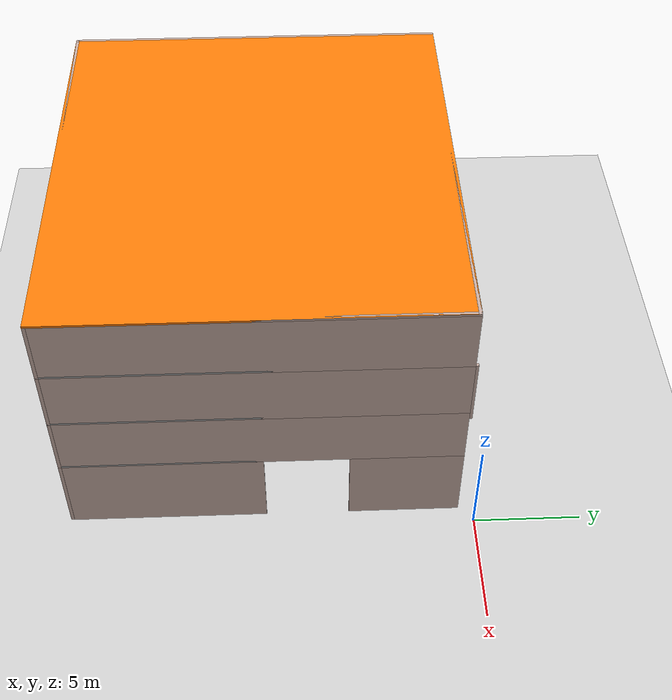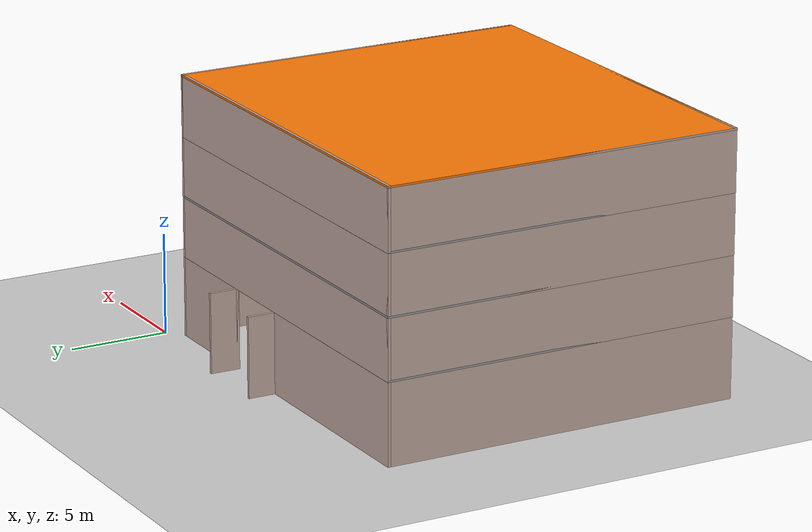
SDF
<sdf version="1.7">
 <world name="default">
  <model name="ground_plane">
   <static>1</static>
   <link name="link">
    <collision name="collision">
     <geometry><plane><normal>0 0 1</normal><size>100 100</size></plane></geometry>
     <surface><friction><ode><mu>100</mu><mu2>50</mu2></ode></friction></surface>
    </collision>
    <visual name="visual">
     <cast_shadows>0</cast_shadows>
     <geometry><plane><normal>0 0 1</normal><size>100 100</size></plane></geometry>
     <material>
      <script><uri>file://media/materials/scripts/gazebo.material</uri><name>Gazebo/Grey</name></script>
     </material>
    </visual>
   </link>
  </model>
  <model name="building2">
   <link name="Floor_0">
    <pose>0 -0.675 4 0 -0 0</pose>
    <visual name="Floor_0_Visual">
     <pose>0 0 0.05 0 -0 0</pose>
     <geometry><box><size>20.15 18.15 0.1</size></box></geometry>
     <material>
      <script><uri>file://media/materials/scripts/gazebo.material</uri><name>Gazebo/Grey</name></script>
      <ambient>1 1 1 1</ambient>
      <shader type="pixel"/>
     </material>
     <meta><layer>1</layer></meta>
    </visual>
    <collision name="Floor_0_Collision">
     <pose>0 0 0.05 0 -0 0</pose>
     <geometry><box><size>20.15 18.15 0.1</size></box></geometry>
     <surface>
      <friction>
       <ode><mu>1</mu><mu2>1</mu2><fdir1>0 0 0</fdir1><slip1>0</slip1><slip2>0</slip2></ode>
       <torsional>
        <coefficient>1</coefficient>
        <patch_radius>0</patch_radius>
        <surface_radius>0</surface_radius>
        <use_patch_radius>1</use_patch_radius>
        <ode><slip>0</slip></ode>
       </torsional>
      </friction>
      <bounce><restitution_coefficient>0</restitution_coefficient><threshold>1e+06</threshold></bounce>
      <contact>
       <collide_without_contact>0</collide_without_contact>
       <collide_without_contact_bitmask>1</collide_without_contact_bitmask>
       <collide_bitmask>1</collide_bitmask>
       <ode>
        <soft_cfm>0</soft_cfm>
        <soft_erp>0.2</soft_erp>
        <kp>1e+13</kp>
        <kd>1</kd>
        <max_vel>0.01</max_vel>
        <min_depth>0</min_depth>
       </ode>
       <bullet>
        <split_impulse>1</split_impulse>
        <split_impulse_penetration_threshold>-0.01</split_impulse_penetration_threshold>
        <soft_cfm>0</soft_cfm>
        <soft_erp>0.2</soft_erp>
        <kp>1e+13</kp>
        <kd>1</kd>
       </bullet>
      </contact>
     </surface>
    </collision>
   </link>
   <link name="Floor_2">
    <pose>0 -0.675 7 0 -0 0</pose>
    <visual name="Floor_2_Visual">
     <pose>0 0 0.05 0 -0 0</pose>
     <geometry><box><size>20.15 18.15 0.1</size></box></geometry>
     <material>
      <script><uri>file://media/materials/scripts/gazebo.material</uri><name>Gazebo/Grey</name></script>
      <ambient>1 1 1 1</ambient>
      <shader type="pixel"/>
     </material>
     <meta><layer>2</layer></meta>
    </visual>
    <collision name="Floor_2_Collision">
     <pose>0 0 0.05 0 -0 0</pose>
     <geometry><box><size>20.15 18.15 0.1</size></box></geometry>
     <surface>
      <friction>
       <ode><mu>1</mu><mu2>1</mu2><fdir1>0 0 0</fdir1><slip1>0</slip1><slip2>0</slip2></ode>
       <torsional>
        <coefficient>1</coefficient>
        <patch_radius>0</patch_radius>
        <surface_radius>0</surface_radius>
        <use_patch_radius>1</use_patch_radius>
        <ode><slip>0</slip></ode>
       </torsional>
      </friction>
      <bounce><restitution_coefficient>0</restitution_coefficient><threshold>1e+06</threshold></bounce>
      <contact>
       <collide_without_contact>0</collide_without_contact>
       <collide_without_contact_bitmask>1</collide_without_contact_bitmask>
       <collide_bitmask>1</collide_bitmask>
       <ode>
        <soft_cfm>0</soft_cfm>
        <soft_erp>0.2</soft_erp>
        <kp>1e+13</kp>
        <kd>1</kd>
        <max_vel>0.01</max_vel>
        <min_depth>0</min_depth>
       </ode>
       <bullet>
        <split_impulse>1</split_impulse>
        <split_impulse_penetration_threshold>-0.01</split_impulse_penetration_threshold>
        <soft_cfm>0</soft_cfm>
        <soft_erp>0.2</soft_erp>
        <kp>1e+13</kp>
        <kd>1</kd>
       </bullet>
      </contact>
     </surface>
    </collision>
   </link>
   <link name="Floor_3">
    <pose>0 -0.675 10 0 -0 0</pose>
    <visual name="Floor_3_Visual">
     <pose>0 0 0.05 0 -0 0</pose>
     <geometry><box><size>20.15 18.15 0.1</size></box></geometry>
     <material>
      <script><uri>file://media/materials/scripts/gazebo.material</uri><name>Gazebo/Grey</name></script>
      <ambient>1 1 1 1</ambient>
      <shader type="pixel"/>
     </material>
     <meta><layer>3</layer></meta>
    </visual>
    <collision name="Floor_3_Collision">
     <pose>0 0 0.05 0 -0 0</pose>
     <geometry><box><size>20.15 18.15 0.1</size></box></geometry>
     <surface>
      <friction>
       <ode><mu>1</mu><mu2>1</mu2><fdir1>0 0 0</fdir1><slip1>0</slip1><slip2>0</slip2></ode>
       <torsional>
        <coefficient>1</coefficient>
        <patch_radius>0</patch_radius>
        <surface_radius>0</surface_radius>
        <use_patch_radius>1</use_patch_radius>
        <ode><slip>0</slip></ode>
       </torsional>
      </friction>
      <bounce><restitution_coefficient>0</restitution_coefficient><threshold>1e+06</threshold></bounce>
      <contact>
       <collide_without_contact>0</collide_without_contact>
       <collide_without_contact_bitmask>1</collide_without_contact_bitmask>
       <collide_bitmask>1</collide_bitmask>
       <ode>
        <soft_cfm>0</soft_cfm>
        <soft_erp>0.2</soft_erp>
        <kp>1e+13</kp>
        <kd>1</kd>
        <max_vel>0.01</max_vel>
        <min_depth>0</min_depth>
       </ode>
       <bullet>
        <split_impulse>1</split_impulse>
        <split_impulse_penetration_threshold>-0.01</split_impulse_penetration_threshold>
        <soft_cfm>0</soft_cfm>
        <soft_erp>0.2</soft_erp>
        <kp>1e+13</kp>
        <kd>1</kd>
       </bullet>
      </contact>
     </surface>
    </collision>
   </link>
   <link name="Floor_8">
    <pose>0 -0.675 13 0 -0 0</pose>
    <visual name="Floor_8_Visual">
     <pose>0 0 0.05 0 -0 0</pose>
     <geometry><box><size>20.15 18.15 0.1</size></box></geometry>
     <material>
      <script><uri>file://media/materials/scripts/gazebo.material</uri><name>Gazebo/Grey</name></script>
      <ambient>0.996078 0.47451 0.0196078 1</ambient>
      <shader type="pixel"/>
     </material>
     <meta><layer>4</layer></meta>
    </visual>
    <collision name="Floor_8_Collision">
     <pose>0 0 0.05 0 -0 0</pose>
     <geometry><box><size>20.15 18.15 0.1</size></box></geometry>
     <surface>
      <friction>
       <ode><mu>1</mu><mu2>1</mu2><fdir1>0 0 0</fdir1><slip1>0</slip1><slip2>0</slip2></ode>
       <torsional>
        <coefficient>1</coefficient>
        <patch_radius>0</patch_radius>
        <surface_radius>0</surface_radius>
        <use_patch_radius>1</use_patch_radius>
        <ode><slip>0</slip></ode>
       </torsional>
      </friction>
      <bounce><restitution_coefficient>0</restitution_coefficient><threshold>1e+06</threshold></bounce>
      <contact>
       <collide_without_contact>0</collide_without_contact>
       <collide_without_contact_bitmask>1</collide_without_contact_bitmask>
       <collide_bitmask>1</collide_bitmask>
       <ode>
        <soft_cfm>0</soft_cfm>
        <soft_erp>0.2</soft_erp>
        <kp>1e+13</kp>
        <kd>1</kd>
        <max_vel>0.01</max_vel>
        <min_depth>0</min_depth>
       </ode>
       <bullet>
        <split_impulse>1</split_impulse>
        <split_impulse_penetration_threshold>-0.01</split_impulse_penetration_threshold>
        <soft_cfm>0</soft_cfm>
        <soft_erp>0.2</soft_erp>
        <kp>1e+13</kp>
        <kd>1</kd>
       </bullet>
      </contact>
     </surface>
    </collision>
   </link>
   <link name="Wall_11">
    <pose>0.8 9 0 0 0 -1.5708</pose>
    <visual name="Wall_11_Visual">
     <pose>0 0 2 0 -0 0</pose>
     <geometry><box><size>1.5 0.15 4</size></box></geometry>
     <material>
      <script><uri>file://media/materials/scripts/gazebo.material</uri><name>Gazebo/Grey</name></script>
      <ambient>0.760784 0.662745 0.627451 1</ambient>
      <shader type="pixel"/>
     </material>
     <meta><layer>0</layer></meta>
    </visual>
    <collision name="Wall_11_Collision">
     <pose>0 0 2 0 -0 0</pose>
     <geometry><box><size>1.5 0.15 4</size></box></geometry>
     <surface>
      <friction>
       <ode><mu>1</mu><mu2>1</mu2><fdir1>0 0 0</fdir1><slip1>0</slip1><slip2>0</slip2></ode>
       <torsional>
        <coefficient>1</coefficient>
        <patch_radius>0</patch_radius>
        <surface_radius>0</surface_radius>
        <use_patch_radius>1</use_patch_radius>
        <ode><slip>0</slip></ode>
       </torsional>
      </friction>
      <bounce><restitution_coefficient>0</restitution_coefficient><threshold>1e+06</threshold></bounce>
      <contact>
       <collide_without_contact>0</collide_without_contact>
       <collide_without_contact_bitmask>1</collide_without_contact_bitmask>
       <collide_bitmask>1</collide_bitmask>
       <ode>
        <soft_cfm>0</soft_cfm>
        <soft_erp>0.2</soft_erp>
        <kp>1e+13</kp>
        <kd>1</kd>
        <max_vel>0.01</max_vel>
        <min_depth>0</min_depth>
       </ode>
       <bullet>
        <split_impulse>1</split_impulse>
        <split_impulse_penetration_threshold>-0.01</split_impulse_penetration_threshold>
        <soft_cfm>0</soft_cfm>
        <soft_erp>0.2</soft_erp>
        <kp>1e+13</kp>
        <kd>1</kd>
       </bullet>
      </contact>
     </surface>
    </collision>
   </link>
   <link name="Wall_12">
    <pose>-4.6 8.325 0 0 -0 3.14159</pose>
    <visual name="Wall_12_Visual">
     <pose>0 0 2 0 -0 0</pose>
     <geometry><box><size>10.95 0.15 4</size></box></geometry>
     <material>
      <script><uri>file://media/materials/scripts/gazebo.material</uri><name>Gazebo/Grey</name></script>
      <ambient>0.760784 0.662745 0.627451 1</ambient>
      <shader type="pixel"/>
     </material>
     <meta><layer>0</layer></meta>
    </visual>
    <collision name="Wall_12_Collision">
     <pose>0 0 2 0 -0 0</pose>
     <geometry><box><size>10.95 0.15 4</size></box></geometry>
     <surface>
      <friction>
       <ode><mu>1</mu><mu2>1</mu2><fdir1>0 0 0</fdir1><slip1>0</slip1><slip2>0</slip2></ode>
       <torsional>
        <coefficient>1</coefficient>
        <patch_radius>0</patch_radius>
        <surface_radius>0</surface_radius>
        <use_patch_radius>1</use_patch_radius>
        <ode><slip>0</slip></ode>
       </torsional>
      </friction>
      <bounce><restitution_coefficient>0</restitution_coefficient><threshold>1e+06</threshold></bounce>
      <contact>
       <collide_without_contact>0</collide_without_contact>
       <collide_without_contact_bitmask>1</collide_without_contact_bitmask>
       <collide_bitmask>1</collide_bitmask>
       <ode>
        <soft_cfm>0</soft_cfm>
        <soft_erp>0.2</soft_erp>
        <kp>1e+13</kp>
        <kd>1</kd>
        <max_vel>0.01</max_vel>
        <min_depth>0</min_depth>
       </ode>
       <bullet>
        <split_impulse>1</split_impulse>
        <split_impulse_penetration_threshold>-0.01</split_impulse_penetration_threshold>
        <soft_cfm>0</soft_cfm>
        <soft_erp>0.2</soft_erp>
        <kp>1e+13</kp>
        <kd>1</kd>
       </bullet>
      </contact>
     </surface>
    </collision>
   </link>
   <link name="Wall_14">
    <pose>-10 -0.675 0 0 0 -1.5708</pose>
    <visual name="Wall_14_Visual">
     <pose>0 0 2 0 -0 0</pose>
     <geometry><box><size>18.15 0.15 4</size></box></geometry>
     <material>
      <script><uri>file://media/materials/scripts/gazebo.material</uri><name>Gazebo/Grey</name></script>
      <ambient>0.760784 0.662745 0.627451 1</ambient>
      <shader type="pixel"/>
     </material>
     <meta><layer>0</layer></meta>
    </visual>
    <collision name="Wall_14_Collision">
     <pose>0 0 2 0 -0 0</pose>
     <geometry><box><size>18.15 0.15 4</size></box></geometry>
     <surface>
      <friction>
       <ode><mu>1</mu><mu2>1</mu2><fdir1>0 0 0</fdir1><slip1>0</slip1><slip2>0</slip2></ode>
       <torsional>
        <coefficient>1</coefficient>
        <patch_radius>0</patch_radius>
        <surface_radius>0</surface_radius>
        <use_patch_radius>1</use_patch_radius>
        <ode><slip>0</slip></ode>
       </torsional>
      </friction>
      <bounce><restitution_coefficient>0</restitution_coefficient><threshold>1e+06</threshold></bounce>
      <contact>
       <collide_without_contact>0</collide_without_contact>
       <collide_without_contact_bitmask>1</collide_without_contact_bitmask>
       <collide_bitmask>1</collide_bitmask>
       <ode>
        <soft_cfm>0</soft_cfm>
        <soft_erp>0.2</soft_erp>
        <kp>1e+13</kp>
        <kd>1</kd>
        <max_vel>0.01</max_vel>
        <min_depth>0</min_depth>
       </ode>
       <bullet>
        <split_impulse>1</split_impulse>
        <split_impulse_penetration_threshold>-0.01</split_impulse_penetration_threshold>
        <soft_cfm>0</soft_cfm>
        <soft_erp>0.2</soft_erp>
        <kp>1e+13</kp>
        <kd>1</kd>
       </bullet>
      </contact>
     </surface>
    </collision>
   </link>
   <link name="Wall_16">
    <pose>0 -9.675 0 0 -0 0</pose>
    <visual name="Wall_16_Visual">
     <pose>0 0 2 0 -0 0</pose>
     <geometry><box><size>20.15 0.15 4</size></box></geometry>
     <material>
      <script><uri>file://media/materials/scripts/gazebo.material</uri><name>Gazebo/Grey</name></script>
      <ambient>0.760784 0.662745 0.627451 1</ambient>
      <shader type="pixel"/>
     </material>
     <meta><layer>0</layer></meta>
    </visual>
    <collision name="Wall_16_Collision">
     <pose>0 0 2 0 -0 0</pose>
     <geometry><box><size>20.15 0.15 4</size></box></geometry>
     <surface>
      <friction>
       <ode><mu>1</mu><mu2>1</mu2><fdir1>0 0 0</fdir1><slip1>0</slip1><slip2>0</slip2></ode>
       <torsional>
        <coefficient>1</coefficient>
        <patch_radius>0</patch_radius>
        <surface_radius>0</surface_radius>
        <use_patch_radius>1</use_patch_radius>
        <ode><slip>0</slip></ode>
       </torsional>
      </friction>
      <bounce><restitution_coefficient>0</restitution_coefficient><threshold>1e+06</threshold></bounce>
      <contact>
       <collide_without_contact>0</collide_without_contact>
       <collide_without_contact_bitmask>1</collide_without_contact_bitmask>
       <collide_bitmask>1</collide_bitmask>
       <ode>
        <soft_cfm>0</soft_cfm>
        <soft_erp>0.2</soft_erp>
        <kp>1e+13</kp>
        <kd>1</kd>
        <max_vel>0.01</max_vel>
        <min_depth>0</min_depth>
       </ode>
       <bullet>
        <split_impulse>1</split_impulse>
        <split_impulse_penetration_threshold>-0.01</split_impulse_penetration_threshold>
        <soft_cfm>0</soft_cfm>
        <soft_erp>0.2</soft_erp>
        <kp>1e+13</kp>
        <kd>1</kd>
       </bullet>
      </contact>
     </surface>
    </collision>
   </link>
   <link name="Wall_24">
    <pose>-10 -0.675 4 0 0 -1.5708</pose>
    <visual name="Wall_24_Visual">
     <pose>0 0 1.5 0 -0 0</pose>
     <geometry><box><size>18.15 0.15 3</size></box></geometry>
     <material>
      <script><uri>file://media/materials/scripts/gazebo.material</uri><name>Gazebo/Grey</name></script>
      <ambient>0.760784 0.662745 0.627451 1</ambient>
      <shader type="pixel"/>
     </material>
     <meta><layer>1</layer></meta>
    </visual>
    <collision name="Wall_24_Collision">
     <pose>0 0 1.5 0 -0 0</pose>
     <geometry><box><size>18.15 0.15 3</size></box></geometry>
     <surface>
      <friction>
       <ode><mu>1</mu><mu2>1</mu2><fdir1>0 0 0</fdir1><slip1>0</slip1><slip2>0</slip2></ode>
       <torsional>
        <coefficient>1</coefficient>
        <patch_radius>0</patch_radius>
        <surface_radius>0</surface_radius>
        <use_patch_radius>1</use_patch_radius>
        <ode><slip>0</slip></ode>
       </torsional>
      </friction>
      <bounce><restitution_coefficient>0</restitution_coefficient><threshold>1e+06</threshold></bounce>
      <contact>
       <collide_without_contact>0</collide_without_contact>
       <collide_without_contact_bitmask>1</collide_without_contact_bitmask>
       <collide_bitmask>1</collide_bitmask>
       <ode>
        <soft_cfm>0</soft_cfm>
        <soft_erp>0.2</soft_erp>
        <kp>1e+13</kp>
        <kd>1</kd>
        <max_vel>0.01</max_vel>
        <min_depth>0</min_depth>
       </ode>
       <bullet>
        <split_impulse>1</split_impulse>
        <split_impulse_penetration_threshold>-0.01</split_impulse_penetration_threshold>
        <soft_cfm>0</soft_cfm>
        <soft_erp>0.2</soft_erp>
        <kp>1e+13</kp>
        <kd>1</kd>
       </bullet>
      </contact>
     </surface>
    </collision>
   </link>
   <link name="Wall_25">
    <pose>0 -9.675 4 0 -0 0</pose>
    <visual name="Wall_25_Visual">
     <pose>0 0 1.5 0 -0 0</pose>
     <geometry><box><size>20.15 0.15 3</size></box></geometry>
     <material>
      <script><uri>file://media/materials/scripts/gazebo.material</uri><name>Gazebo/Grey</name></script>
      <ambient>0.760784 0.662745 0.627451 1</ambient>
      <shader type="pixel"/>
     </material>
     <meta><layer>1</layer></meta>
    </visual>
    <collision name="Wall_25_Collision">
     <pose>0 0 1.5 0 -0 0</pose>
     <geometry><box><size>20.15 0.15 3</size></box></geometry>
     <surface>
      <friction>
       <ode><mu>1</mu><mu2>1</mu2><fdir1>0 0 0</fdir1><slip1>0</slip1><slip2>0</slip2></ode>
       <torsional>
        <coefficient>1</coefficient>
        <patch_radius>0</patch_radius>
        <surface_radius>0</surface_radius>
        <use_patch_radius>1</use_patch_radius>
        <ode><slip>0</slip></ode>
       </torsional>
      </friction>
      <bounce><restitution_coefficient>0</restitution_coefficient><threshold>1e+06</threshold></bounce>
      <contact>
       <collide_without_contact>0</collide_without_contact>
       <collide_without_contact_bitmask>1</collide_without_contact_bitmask>
       <collide_bitmask>1</collide_bitmask>
       <ode>
        <soft_cfm>0</soft_cfm>
        <soft_erp>0.2</soft_erp>
        <kp>1e+13</kp>
        <kd>1</kd>
        <max_vel>0.01</max_vel>
        <min_depth>0</min_depth>
       </ode>
       <bullet>
        <split_impulse>1</split_impulse>
        <split_impulse_penetration_threshold>-0.01</split_impulse_penetration_threshold>
        <soft_cfm>0</soft_cfm>
        <soft_erp>0.2</soft_erp>
        <kp>1e+13</kp>
        <kd>1</kd>
       </bullet>
      </contact>
     </surface>
    </collision>
   </link>
   <link name="Wall_31">
    <pose>0 8.325 4 0 -0 0</pose>
    <visual name="Wall_31_Visual">
     <pose>0 0 1.5 0 -0 0</pose>
     <geometry><box><size>20.15 0.15 3</size></box></geometry>
     <material>
      <script><uri>file://media/materials/scripts/gazebo.material</uri><name>Gazebo/Grey</name></script>
      <ambient>0.760784 0.662745 0.627451 1</ambient>
      <shader type="pixel"/>
     </material>
     <meta><layer>1</layer></meta>
    </visual>
    <collision name="Wall_31_Collision">
     <pose>0 0 1.5 0 -0 0</pose>
     <geometry><box><size>20.15 0.15 3</size></box></geometry>
     <surface>
      <friction>
       <ode><mu>1</mu><mu2>1</mu2><fdir1>0 0 0</fdir1><slip1>0</slip1><slip2>0</slip2></ode>
       <torsional>
        <coefficient>1</coefficient>
        <patch_radius>0</patch_radius>
        <surface_radius>0</surface_radius>
        <use_patch_radius>1</use_patch_radius>
        <ode><slip>0</slip></ode>
       </torsional>
      </friction>
      <bounce><restitution_coefficient>0</restitution_coefficient><threshold>1e+06</threshold></bounce>
      <contact>
       <collide_without_contact>0</collide_without_contact>
       <collide_without_contact_bitmask>1</collide_without_contact_bitmask>
       <collide_bitmask>1</collide_bitmask>
       <ode>
        <soft_cfm>0</soft_cfm>
        <soft_erp>0.2</soft_erp>
        <kp>1e+13</kp>
        <kd>1</kd>
        <max_vel>0.01</max_vel>
        <min_depth>0</min_depth>
       </ode>
       <bullet>
        <split_impulse>1</split_impulse>
        <split_impulse_penetration_threshold>-0.01</split_impulse_penetration_threshold>
        <soft_cfm>0</soft_cfm>
        <soft_erp>0.2</soft_erp>
        <kp>1e+13</kp>
        <kd>1</kd>
       </bullet>
      </contact>
     </surface>
    </collision>
   </link>
   <link name="Wall_33">
    <pose>10 -0.6 4 0 0 -1.5708</pose>
    <visual name="Wall_33_Visual">
     <pose>0 0 1.5 0 -0 0</pose>
     <geometry><box><size>18 0.15 3</size></box></geometry>
     <material>
      <script><uri>file://media/materials/scripts/gazebo.material</uri><name>Gazebo/Grey</name></script>
      <ambient>0.760784 0.662745 0.627451 1</ambient>
      <shader type="pixel"/>
     </material>
     <meta><layer>1</layer></meta>
    </visual>
    <collision name="Wall_33_Collision">
     <pose>0 0 1.5 0 -0 0</pose>
     <geometry><box><size>18 0.15 3</size></box></geometry>
     <surface>
      <friction>
       <ode><mu>1</mu><mu2>1</mu2><fdir1>0 0 0</fdir1><slip1>0</slip1><slip2>0</slip2></ode>
       <torsional>
        <coefficient>1</coefficient>
        <patch_radius>0</patch_radius>
        <surface_radius>0</surface_radius>
        <use_patch_radius>1</use_patch_radius>
        <ode><slip>0</slip></ode>
       </torsional>
      </friction>
      <bounce><restitution_coefficient>0</restitution_coefficient><threshold>1e+06</threshold></bounce>
      <contact>
       <collide_without_contact>0</collide_without_contact>
       <collide_without_contact_bitmask>1</collide_without_contact_bitmask>
       <collide_bitmask>1</collide_bitmask>
       <ode>
        <soft_cfm>0</soft_cfm>
        <soft_erp>0.2</soft_erp>
        <kp>1e+13</kp>
        <kd>1</kd>
        <max_vel>0.01</max_vel>
        <min_depth>0</min_depth>
       </ode>
       <bullet>
        <split_impulse>1</split_impulse>
        <split_impulse_penetration_threshold>-0.01</split_impulse_penetration_threshold>
        <soft_cfm>0</soft_cfm>
        <soft_erp>0.2</soft_erp>
        <kp>1e+13</kp>
        <kd>1</kd>
       </bullet>
      </contact>
     </surface>
    </collision>
   </link>
   <link name="Wall_4">
    <pose>10 5.825 0 0 0 -1.5708</pose>
    <visual name="Wall_4_Visual">
     <pose>0 0 2 0 -0 0</pose>
     <geometry><box><size>5.15 0.15 4</size></box></geometry>
     <material>
      <script><uri>file://media/materials/scripts/gazebo.material</uri><name>Gazebo/Grey</name></script>
      <ambient>0.760784 0.662745 0.627451 1</ambient>
      <shader type="pixel"/>
     </material>
     <meta><layer>0</layer></meta>
    </visual>
    <collision name="Wall_4_Collision">
     <pose>0 0 2 0 -0 0</pose>
     <geometry><box><size>5.15 0.15 4</size></box></geometry>
     <surface>
      <friction>
       <ode><mu>1</mu><mu2>1</mu2><fdir1>0 0 0</fdir1><slip1>0</slip1><slip2>0</slip2></ode>
       <torsional>
        <coefficient>1</coefficient>
        <patch_radius>0</patch_radius>
        <surface_radius>0</surface_radius>
        <use_patch_radius>1</use_patch_radius>
        <ode><slip>0</slip></ode>
       </torsional>
      </friction>
      <bounce><restitution_coefficient>0</restitution_coefficient><threshold>1e+06</threshold></bounce>
      <contact>
       <collide_without_contact>0</collide_without_contact>
       <collide_without_contact_bitmask>1</collide_without_contact_bitmask>
       <collide_bitmask>1</collide_bitmask>
       <ode>
        <soft_cfm>0</soft_cfm>
        <soft_erp>0.2</soft_erp>
        <kp>1e+13</kp>
        <kd>1</kd>
        <max_vel>0.01</max_vel>
        <min_depth>0</min_depth>
       </ode>
       <bullet>
        <split_impulse>1</split_impulse>
        <split_impulse_penetration_threshold>-0.01</split_impulse_penetration_threshold>
        <soft_cfm>0</soft_cfm>
        <soft_erp>0.2</soft_erp>
        <kp>1e+13</kp>
        <kd>1</kd>
       </bullet>
      </contact>
     </surface>
    </collision>
   </link>
   <link name="Wall_42">
    <pose>-10 -0.675 7 0 0 -1.5708</pose>
    <visual name="Wall_42_Visual">
     <pose>0 0 1.5 0 -0 0</pose>
     <geometry><box><size>18.15 0.15 3</size></box></geometry>
     <material>
      <script><uri>file://media/materials/scripts/gazebo.material</uri><name>Gazebo/Grey</name></script>
      <ambient>0.760784 0.662745 0.627451 1</ambient>
      <shader type="pixel"/>
     </material>
     <meta><layer>2</layer></meta>
    </visual>
    <collision name="Wall_42_Collision">
     <pose>0 0 1.5 0 -0 0</pose>
     <geometry><box><size>18.15 0.15 3</size></box></geometry>
     <surface>
      <friction>
       <ode><mu>1</mu><mu2>1</mu2><fdir1>0 0 0</fdir1><slip1>0</slip1><slip2>0</slip2></ode>
       <torsional>
        <coefficient>1</coefficient>
        <patch_radius>0</patch_radius>
        <surface_radius>0</surface_radius>
        <use_patch_radius>1</use_patch_radius>
        <ode><slip>0</slip></ode>
       </torsional>
      </friction>
      <bounce><restitution_coefficient>0</restitution_coefficient><threshold>1e+06</threshold></bounce>
      <contact>
       <collide_without_contact>0</collide_without_contact>
       <collide_without_contact_bitmask>1</collide_without_contact_bitmask>
       <collide_bitmask>1</collide_bitmask>
       <ode>
        <soft_cfm>0</soft_cfm>
        <soft_erp>0.2</soft_erp>
        <kp>1e+13</kp>
        <kd>1</kd>
        <max_vel>0.01</max_vel>
        <min_depth>0</min_depth>
       </ode>
       <bullet>
        <split_impulse>1</split_impulse>
        <split_impulse_penetration_threshold>-0.01</split_impulse_penetration_threshold>
        <soft_cfm>0</soft_cfm>
        <soft_erp>0.2</soft_erp>
        <kp>1e+13</kp>
        <kd>1</kd>
       </bullet>
      </contact>
     </surface>
    </collision>
   </link>
   <link name="Wall_43">
    <pose>0 -9.675 7 0 -0 0</pose>
    <visual name="Wall_43_Visual">
     <pose>0 0 1.5 0 -0 0</pose>
     <geometry><box><size>20.15 0.15 3</size></box></geometry>
     <material>
      <script><uri>file://media/materials/scripts/gazebo.material</uri><name>Gazebo/Grey</name></script>
      <ambient>0.760784 0.662745 0.627451 1</ambient>
      <shader type="pixel"/>
     </material>
     <meta><layer>2</layer></meta>
    </visual>
    <collision name="Wall_43_Collision">
     <pose>0 0 1.5 0 -0 0</pose>
     <geometry><box><size>20.15 0.15 3</size></box></geometry>
     <surface>
      <friction>
       <ode><mu>1</mu><mu2>1</mu2><fdir1>0 0 0</fdir1><slip1>0</slip1><slip2>0</slip2></ode>
       <torsional>
        <coefficient>1</coefficient>
        <patch_radius>0</patch_radius>
        <surface_radius>0</surface_radius>
        <use_patch_radius>1</use_patch_radius>
        <ode><slip>0</slip></ode>
       </torsional>
      </friction>
      <bounce><restitution_coefficient>0</restitution_coefficient><threshold>1e+06</threshold></bounce>
      <contact>
       <collide_without_contact>0</collide_without_contact>
       <collide_without_contact_bitmask>1</collide_without_contact_bitmask>
       <collide_bitmask>1</collide_bitmask>
       <ode>
        <soft_cfm>0</soft_cfm>
        <soft_erp>0.2</soft_erp>
        <kp>1e+13</kp>
        <kd>1</kd>
        <max_vel>0.01</max_vel>
        <min_depth>0</min_depth>
       </ode>
       <bullet>
        <split_impulse>1</split_impulse>
        <split_impulse_penetration_threshold>-0.01</split_impulse_penetration_threshold>
        <soft_cfm>0</soft_cfm>
        <soft_erp>0.2</soft_erp>
        <kp>1e+13</kp>
        <kd>1</kd>
       </bullet>
      </contact>
     </surface>
    </collision>
   </link>
   <link name="Wall_44">
    <pose>0 8.325 7 0 -0 0</pose>
    <visual name="Wall_44_Visual">
     <pose>0 0 1.5 0 -0 0</pose>
     <geometry><box><size>20.15 0.15 3</size></box></geometry>
     <material>
      <script><uri>file://media/materials/scripts/gazebo.material</uri><name>Gazebo/Grey</name></script>
      <ambient>0.760784 0.662745 0.627451 1</ambient>
      <shader type="pixel"/>
     </material>
     <meta><layer>2</layer></meta>
    </visual>
    <collision name="Wall_44_Collision">
     <pose>0 0 1.5 0 -0 0</pose>
     <geometry><box><size>20.15 0.15 3</size></box></geometry>
     <surface>
      <friction>
       <ode><mu>1</mu><mu2>1</mu2><fdir1>0 0 0</fdir1><slip1>0</slip1><slip2>0</slip2></ode>
       <torsional>
        <coefficient>1</coefficient>
        <patch_radius>0</patch_radius>
        <surface_radius>0</surface_radius>
        <use_patch_radius>1</use_patch_radius>
        <ode><slip>0</slip></ode>
       </torsional>
      </friction>
      <bounce><restitution_coefficient>0</restitution_coefficient><threshold>1e+06</threshold></bounce>
      <contact>
       <collide_without_contact>0</collide_without_contact>
       <collide_without_contact_bitmask>1</collide_without_contact_bitmask>
       <collide_bitmask>1</collide_bitmask>
       <ode>
        <soft_cfm>0</soft_cfm>
        <soft_erp>0.2</soft_erp>
        <kp>1e+13</kp>
        <kd>1</kd>
        <max_vel>0.01</max_vel>
        <min_depth>0</min_depth>
       </ode>
       <bullet>
        <split_impulse>1</split_impulse>
        <split_impulse_penetration_threshold>-0.01</split_impulse_penetration_threshold>
        <soft_cfm>0</soft_cfm>
        <soft_erp>0.2</soft_erp>
        <kp>1e+13</kp>
        <kd>1</kd>
       </bullet>
      </contact>
     </surface>
    </collision>
   </link>
   <link name="Wall_45">
    <pose>10 -0.6 7 0 0 -1.5708</pose>
    <visual name="Wall_45_Visual">
     <pose>0 0 1.5 0 -0 0</pose>
     <geometry><box><size>18 0.15 3</size></box></geometry>
     <material>
      <script><uri>file://media/materials/scripts/gazebo.material</uri><name>Gazebo/Grey</name></script>
      <ambient>0.760784 0.662745 0.627451 1</ambient>
      <shader type="pixel"/>
     </material>
     <meta><layer>2</layer></meta>
    </visual>
    <collision name="Wall_45_Collision">
     <pose>0 0 1.5 0 -0 0</pose>
     <geometry><box><size>18 0.15 3</size></box></geometry>
     <surface>
      <friction>
       <ode><mu>1</mu><mu2>1</mu2><fdir1>0 0 0</fdir1><slip1>0</slip1><slip2>0</slip2></ode>
       <torsional>
        <coefficient>1</coefficient>
        <patch_radius>0</patch_radius>
        <surface_radius>0</surface_radius>
        <use_patch_radius>1</use_patch_radius>
        <ode><slip>0</slip></ode>
       </torsional>
      </friction>
      <bounce><restitution_coefficient>0</restitution_coefficient><threshold>1e+06</threshold></bounce>
      <contact>
       <collide_without_contact>0</collide_without_contact>
       <collide_without_contact_bitmask>1</collide_without_contact_bitmask>
       <collide_bitmask>1</collide_bitmask>
       <ode>
        <soft_cfm>0</soft_cfm>
        <soft_erp>0.2</soft_erp>
        <kp>1e+13</kp>
        <kd>1</kd>
        <max_vel>0.01</max_vel>
        <min_depth>0</min_depth>
       </ode>
       <bullet>
        <split_impulse>1</split_impulse>
        <split_impulse_penetration_threshold>-0.01</split_impulse_penetration_threshold>
        <soft_cfm>0</soft_cfm>
        <soft_erp>0.2</soft_erp>
        <kp>1e+13</kp>
        <kd>1</kd>
       </bullet>
      </contact>
     </surface>
    </collision>
   </link>
   <link name="Wall_46">
    <pose>-10 -0.675 10 0 0 -1.5708</pose>
    <visual name="Wall_46_Visual">
     <pose>0 0 1.5 0 -0 0</pose>
     <geometry><box><size>18.15 0.15 3</size></box></geometry>
     <material>
      <script><uri>file://media/materials/scripts/gazebo.material</uri><name>Gazebo/Grey</name></script>
      <ambient>0.760784 0.662745 0.627451 1</ambient>
      <shader type="pixel"/>
     </material>
     <meta><layer>3</layer></meta>
    </visual>
    <collision name="Wall_46_Collision">
     <pose>0 0 1.5 0 -0 0</pose>
     <geometry><box><size>18.15 0.15 3</size></box></geometry>
     <surface>
      <friction>
       <ode><mu>1</mu><mu2>1</mu2><fdir1>0 0 0</fdir1><slip1>0</slip1><slip2>0</slip2></ode>
       <torsional>
        <coefficient>1</coefficient>
        <patch_radius>0</patch_radius>
        <surface_radius>0</surface_radius>
        <use_patch_radius>1</use_patch_radius>
        <ode><slip>0</slip></ode>
       </torsional>
      </friction>
      <bounce><restitution_coefficient>0</restitution_coefficient><threshold>1e+06</threshold></bounce>
      <contact>
       <collide_without_contact>0</collide_without_contact>
       <collide_without_contact_bitmask>1</collide_without_contact_bitmask>
       <collide_bitmask>1</collide_bitmask>
       <ode>
        <soft_cfm>0</soft_cfm>
        <soft_erp>0.2</soft_erp>
        <kp>1e+13</kp>
        <kd>1</kd>
        <max_vel>0.01</max_vel>
        <min_depth>0</min_depth>
       </ode>
       <bullet>
        <split_impulse>1</split_impulse>
        <split_impulse_penetration_threshold>-0.01</split_impulse_penetration_threshold>
        <soft_cfm>0</soft_cfm>
        <soft_erp>0.2</soft_erp>
        <kp>1e+13</kp>
        <kd>1</kd>
       </bullet>
      </contact>
     </surface>
    </collision>
   </link>
   <link name="Wall_47">
    <pose>0 -9.675 10 0 -0 0</pose>
    <visual name="Wall_47_Visual">
     <pose>0 0 1.5 0 -0 0</pose>
     <geometry><box><size>20.15 0.15 3</size></box></geometry>
     <material>
      <script><uri>file://media/materials/scripts/gazebo.material</uri><name>Gazebo/Grey</name></script>
      <ambient>0.760784 0.662745 0.627451 1</ambient>
      <shader type="pixel"/>
     </material>
     <meta><layer>3</layer></meta>
    </visual>
    <collision name="Wall_47_Collision">
     <pose>0 0 1.5 0 -0 0</pose>
     <geometry><box><size>20.15 0.15 3</size></box></geometry>
     <surface>
      <friction>
       <ode><mu>1</mu><mu2>1</mu2><fdir1>0 0 0</fdir1><slip1>0</slip1><slip2>0</slip2></ode>
       <torsional>
        <coefficient>1</coefficient>
        <patch_radius>0</patch_radius>
        <surface_radius>0</surface_radius>
        <use_patch_radius>1</use_patch_radius>
        <ode><slip>0</slip></ode>
       </torsional>
      </friction>
      <bounce><restitution_coefficient>0</restitution_coefficient><threshold>1e+06</threshold></bounce>
      <contact>
       <collide_without_contact>0</collide_without_contact>
       <collide_without_contact_bitmask>1</collide_without_contact_bitmask>
       <collide_bitmask>1</collide_bitmask>
       <ode>
        <soft_cfm>0</soft_cfm>
        <soft_erp>0.2</soft_erp>
        <kp>1e+13</kp>
        <kd>1</kd>
        <max_vel>0.01</max_vel>
        <min_depth>0</min_depth>
       </ode>
       <bullet>
        <split_impulse>1</split_impulse>
        <split_impulse_penetration_threshold>-0.01</split_impulse_penetration_threshold>
        <soft_cfm>0</soft_cfm>
        <soft_erp>0.2</soft_erp>
        <kp>1e+13</kp>
        <kd>1</kd>
       </bullet>
      </contact>
     </surface>
    </collision>
   </link>
   <link name="Wall_48">
    <pose>0 8.325 10 0 -0 0</pose>
    <visual name="Wall_48_Visual">
     <pose>0 0 1.5 0 -0 0</pose>
     <geometry><box><size>20.15 0.15 3</size></box></geometry>
     <material>
      <script><uri>file://media/materials/scripts/gazebo.material</uri><name>Gazebo/Grey</name></script>
      <ambient>0.760784 0.662745 0.627451 1</ambient>
      <shader type="pixel"/>
     </material>
     <meta><layer>3</layer></meta>
    </visual>
    <collision name="Wall_48_Collision">
     <pose>0 0 1.5 0 -0 0</pose>
     <geometry><box><size>20.15 0.15 3</size></box></geometry>
     <surface>
      <friction>
       <ode><mu>1</mu><mu2>1</mu2><fdir1>0 0 0</fdir1><slip1>0</slip1><slip2>0</slip2></ode>
       <torsional>
        <coefficient>1</coefficient>
        <patch_radius>0</patch_radius>
        <surface_radius>0</surface_radius>
        <use_patch_radius>1</use_patch_radius>
        <ode><slip>0</slip></ode>
       </torsional>
      </friction>
      <bounce><restitution_coefficient>0</restitution_coefficient><threshold>1e+06</threshold></bounce>
      <contact>
       <collide_without_contact>0</collide_without_contact>
       <collide_without_contact_bitmask>1</collide_without_contact_bitmask>
       <collide_bitmask>1</collide_bitmask>
       <ode>
        <soft_cfm>0</soft_cfm>
        <soft_erp>0.2</soft_erp>
        <kp>1e+13</kp>
        <kd>1</kd>
        <max_vel>0.01</max_vel>
        <min_depth>0</min_depth>
       </ode>
       <bullet>
        <split_impulse>1</split_impulse>
        <split_impulse_penetration_threshold>-0.01</split_impulse_penetration_threshold>
        <soft_cfm>0</soft_cfm>
        <soft_erp>0.2</soft_erp>
        <kp>1e+13</kp>
        <kd>1</kd>
       </bullet>
      </contact>
     </surface>
    </collision>
   </link>
   <link name="Wall_49">
    <pose>10 -0.6 10 0 0 -1.5708</pose>
    <visual name="Wall_49_Visual">
     <pose>0 0 1.5 0 -0 0</pose>
     <geometry><box><size>18 0.15 3</size></box></geometry>
     <material>
      <script><uri>file://media/materials/scripts/gazebo.material</uri><name>Gazebo/Grey</name></script>
      <ambient>0.760784 0.662745 0.627451 1</ambient>
      <shader type="pixel"/>
     </material>
     <meta><layer>3</layer></meta>
    </visual>
    <collision name="Wall_49_Collision">
     <pose>0 0 1.5 0 -0 0</pose>
     <geometry><box><size>18 0.15 3</size></box></geometry>
     <surface>
      <friction>
       <ode><mu>1</mu><mu2>1</mu2><fdir1>0 0 0</fdir1><slip1>0</slip1><slip2>0</slip2></ode>
       <torsional>
        <coefficient>1</coefficient>
        <patch_radius>0</patch_radius>
        <surface_radius>0</surface_radius>
        <use_patch_radius>1</use_patch_radius>
        <ode><slip>0</slip></ode>
       </torsional>
      </friction>
      <bounce><restitution_coefficient>0</restitution_coefficient><threshold>1e+06</threshold></bounce>
      <contact>
       <collide_without_contact>0</collide_without_contact>
       <collide_without_contact_bitmask>1</collide_without_contact_bitmask>
       <collide_bitmask>1</collide_bitmask>
       <ode>
        <soft_cfm>0</soft_cfm>
        <soft_erp>0.2</soft_erp>
        <kp>1e+13</kp>
        <kd>1</kd>
        <max_vel>0.01</max_vel>
        <min_depth>0</min_depth>
       </ode>
       <bullet>
        <split_impulse>1</split_impulse>
        <split_impulse_penetration_threshold>-0.01</split_impulse_penetration_threshold>
        <soft_cfm>0</soft_cfm>
        <soft_erp>0.2</soft_erp>
        <kp>1e+13</kp>
        <kd>1</kd>
       </bullet>
      </contact>
     </surface>
    </collision>
   </link>
   <link name="Wall_6">
    <pose>10 -5.175 0 0 0 -1.5708</pose>
    <visual name="Wall_6_Visual">
     <pose>0 0 2 0 -0 0</pose>
     <geometry><box><size>9.15 0.15 4</size></box></geometry>
     <material>
      <script><uri>file://media/materials/scripts/gazebo.material</uri><name>Gazebo/Grey</name></script>
      <ambient>0.760784 0.662745 0.627451 1</ambient>
      <shader type="pixel"/>
     </material>
     <meta><layer>0</layer></meta>
    </visual>
    <collision name="Wall_6_Collision">
     <pose>0 0 2 0 -0 0</pose>
     <geometry><box><size>9.15 0.15 4</size></box></geometry>
     <surface>
      <friction>
       <ode><mu>1</mu><mu2>1</mu2><fdir1>0 0 0</fdir1><slip1>0</slip1><slip2>0</slip2></ode>
       <torsional>
        <coefficient>1</coefficient>
        <patch_radius>0</patch_radius>
        <surface_radius>0</surface_radius>
        <use_patch_radius>1</use_patch_radius>
        <ode><slip>0</slip></ode>
       </torsional>
      </friction>
      <bounce><restitution_coefficient>0</restitution_coefficient><threshold>1e+06</threshold></bounce>
      <contact>
       <collide_without_contact>0</collide_without_contact>
       <collide_without_contact_bitmask>1</collide_without_contact_bitmask>
       <collide_bitmask>1</collide_bitmask>
       <ode>
        <soft_cfm>0</soft_cfm>
        <soft_erp>0.2</soft_erp>
        <kp>1e+13</kp>
        <kd>1</kd>
        <max_vel>0.01</max_vel>
        <min_depth>0</min_depth>
       </ode>
       <bullet>
        <split_impulse>1</split_impulse>
        <split_impulse_penetration_threshold>-0.01</split_impulse_penetration_threshold>
        <soft_cfm>0</soft_cfm>
        <soft_erp>0.2</soft_erp>
        <kp>1e+13</kp>
        <kd>1</kd>
       </bullet>
      </contact>
     </surface>
    </collision>
   </link>
   <link name="Wall_76">
    <pose>-10 -0.675 13 0 0 -1.5708</pose>
    <visual name="Wall_76_Visual">
     <pose>0 0 0.05 0 -0 0</pose>
     <geometry><box><size>18.15 0.15 0.1</size></box></geometry>
     <material>
      <script><uri>file://media/materials/scripts/gazebo.material</uri><name>Gazebo/Grey</name></script>
      <ambient>0.760784 0.662745 0.627451 1</ambient>
      <shader type="pixel"/>
     </material>
     <meta><layer>4</layer></meta>
    </visual>
    <collision name="Wall_76_Collision">
     <pose>0 0 0.05 0 -0 0</pose>
     <geometry><box><size>18.15 0.15 0.1</size></box></geometry>
     <surface>
      <friction>
       <ode><mu>1</mu><mu2>1</mu2><fdir1>0 0 0</fdir1><slip1>0</slip1><slip2>0</slip2></ode>
       <torsional>
        <coefficient>1</coefficient>
        <patch_radius>0</patch_radius>
        <surface_radius>0</surface_radius>
        <use_patch_radius>1</use_patch_radius>
        <ode><slip>0</slip></ode>
       </torsional>
      </friction>
      <bounce><restitution_coefficient>0</restitution_coefficient><threshold>1e+06</threshold></bounce>
      <contact>
       <collide_without_contact>0</collide_without_contact>
       <collide_without_contact_bitmask>1</collide_without_contact_bitmask>
       <collide_bitmask>1</collide_bitmask>
       <ode>
        <soft_cfm>0</soft_cfm>
        <soft_erp>0.2</soft_erp>
        <kp>1e+13</kp>
        <kd>1</kd>
        <max_vel>0.01</max_vel>
        <min_depth>0</min_depth>
       </ode>
       <bullet>
        <split_impulse>1</split_impulse>
        <split_impulse_penetration_threshold>-0.01</split_impulse_penetration_threshold>
        <soft_cfm>0</soft_cfm>
        <soft_erp>0.2</soft_erp>
        <kp>1e+13</kp>
        <kd>1</kd>
       </bullet>
      </contact>
     </surface>
    </collision>
   </link>
   <link name="Wall_77">
    <pose>0 -9.675 13 0 -0 0</pose>
    <visual name="Wall_77_Visual">
     <pose>0 0 0.05 0 -0 0</pose>
     <geometry><box><size>20.15 0.15 0.1</size></box></geometry>
     <material>
      <script><uri>file://media/materials/scripts/gazebo.material</uri><name>Gazebo/Grey</name></script>
      <ambient>0.760784 0.662745 0.627451 1</ambient>
      <shader type="pixel"/>
     </material>
     <meta><layer>4</layer></meta>
    </visual>
    <collision name="Wall_77_Collision">
     <pose>0 0 0.05 0 -0 0</pose>
     <geometry><box><size>20.15 0.15 0.1</size></box></geometry>
     <surface>
      <friction>
       <ode><mu>1</mu><mu2>1</mu2><fdir1>0 0 0</fdir1><slip1>0</slip1><slip2>0</slip2></ode>
       <torsional>
        <coefficient>1</coefficient>
        <patch_radius>0</patch_radius>
        <surface_radius>0</surface_radius>
        <use_patch_radius>1</use_patch_radius>
        <ode><slip>0</slip></ode>
       </torsional>
      </friction>
      <bounce><restitution_coefficient>0</restitution_coefficient><threshold>1e+06</threshold></bounce>
      <contact>
       <collide_without_contact>0</collide_without_contact>
       <collide_without_contact_bitmask>1</collide_without_contact_bitmask>
       <collide_bitmask>1</collide_bitmask>
       <ode>
        <soft_cfm>0</soft_cfm>
        <soft_erp>0.2</soft_erp>
        <kp>1e+13</kp>
        <kd>1</kd>
        <max_vel>0.01</max_vel>
        <min_depth>0</min_depth>
       </ode>
       <bullet>
        <split_impulse>1</split_impulse>
        <split_impulse_penetration_threshold>-0.01</split_impulse_penetration_threshold>
        <soft_cfm>0</soft_cfm>
        <soft_erp>0.2</soft_erp>
        <kp>1e+13</kp>
        <kd>1</kd>
       </bullet>
      </contact>
     </surface>
    </collision>
   </link>
   <link name="Wall_78">
    <pose>0 8.325 13 0 -0 0</pose>
    <visual name="Wall_78_Visual">
     <pose>0 0 0.05 0 -0 0</pose>
     <geometry><box><size>20.15 0.15 0.1</size></box></geometry>
     <material>
      <script><uri>file://media/materials/scripts/gazebo.material</uri><name>Gazebo/Grey</name></script>
      <ambient>0.760784 0.662745 0.627451 1</ambient>
      <shader type="pixel"/>
     </material>
     <meta><layer>4</layer></meta>
    </visual>
    <collision name="Wall_78_Collision">
     <pose>0 0 0.05 0 -0 0</pose>
     <geometry><box><size>20.15 0.15 0.1</size></box></geometry>
     <surface>
      <friction>
       <ode><mu>1</mu><mu2>1</mu2><fdir1>0 0 0</fdir1><slip1>0</slip1><slip2>0</slip2></ode>
       <torsional>
        <coefficient>1</coefficient>
        <patch_radius>0</patch_radius>
        <surface_radius>0</surface_radius>
        <use_patch_radius>1</use_patch_radius>
        <ode><slip>0</slip></ode>
       </torsional>
      </friction>
      <bounce><restitution_coefficient>0</restitution_coefficient><threshold>1e+06</threshold></bounce>
      <contact>
       <collide_without_contact>0</collide_without_contact>
       <collide_without_contact_bitmask>1</collide_without_contact_bitmask>
       <collide_bitmask>1</collide_bitmask>
       <ode>
        <soft_cfm>0</soft_cfm>
        <soft_erp>0.2</soft_erp>
        <kp>1e+13</kp>
        <kd>1</kd>
        <max_vel>0.01</max_vel>
        <min_depth>0</min_depth>
       </ode>
       <bullet>
        <split_impulse>1</split_impulse>
        <split_impulse_penetration_threshold>-0.01</split_impulse_penetration_threshold>
        <soft_cfm>0</soft_cfm>
        <soft_erp>0.2</soft_erp>
        <kp>1e+13</kp>
        <kd>1</kd>
       </bullet>
      </contact>
     </surface>
    </collision>
   </link>
   <link name="Wall_79">
    <pose>10 -0.6 13 0 0 -1.5708</pose>
    <visual name="Wall_79_Visual">
     <pose>0 0 0.05 0 -0 0</pose>
     <geometry><box><size>18 0.15 0.1</size></box></geometry>
     <material>
      <script><uri>file://media/materials/scripts/gazebo.material</uri><name>Gazebo/Grey</name></script>
      <ambient>0.760784 0.662745 0.627451 1</ambient>
      <shader type="pixel"/>
     </material>
     <meta><layer>4</layer></meta>
    </visual>
    <collision name="Wall_79_Collision">
     <pose>0 0 0.05 0 -0 0</pose>
     <geometry><box><size>18 0.15 0.1</size></box></geometry>
     <surface>
      <friction>
       <ode><mu>1</mu><mu2>1</mu2><fdir1>0 0 0</fdir1><slip1>0</slip1><slip2>0</slip2></ode>
       <torsional>
        <coefficient>1</coefficient>
        <patch_radius>0</patch_radius>
        <surface_radius>0</surface_radius>
        <use_patch_radius>1</use_patch_radius>
        <ode><slip>0</slip></ode>
       </torsional>
      </friction>
      <bounce><restitution_coefficient>0</restitution_coefficient><threshold>1e+06</threshold></bounce>
      <contact>
       <collide_without_contact>0</collide_without_contact>
       <collide_without_contact_bitmask>1</collide_without_contact_bitmask>
       <collide_bitmask>1</collide_bitmask>
       <ode>
        <soft_cfm>0</soft_cfm>
        <soft_erp>0.2</soft_erp>
        <kp>1e+13</kp>
        <kd>1</kd>
        <max_vel>0.01</max_vel>
        <min_depth>0</min_depth>
       </ode>
       <bullet>
        <split_impulse>1</split_impulse>
        <split_impulse_penetration_threshold>-0.01</split_impulse_penetration_threshold>
        <soft_cfm>0</soft_cfm>
        <soft_erp>0.2</soft_erp>
        <kp>1e+13</kp>
        <kd>1</kd>
       </bullet>
      </contact>
     </surface>
    </collision>
   </link>
   <link name="Wall_8">
    <pose>7.325 8.325 0 0 -0 3.14159</pose>
    <visual name="Wall_8_Visual">
     <pose>0 0 2 0 -0 0</pose>
     <geometry><box><size>5.5 0.15 4</size></box></geometry>
     <material>
      <script><uri>file://media/materials/scripts/gazebo.material</uri><name>Gazebo/Grey</name></script>
      <ambient>0.760784 0.662745 0.627451 1</ambient>
      <shader type="pixel"/>
     </material>
     <meta><layer>0</layer></meta>
    </visual>
    <collision name="Wall_8_Collision">
     <pose>0 0 2 0 -0 0</pose>
     <geometry><box><size>5.5 0.15 4</size></box></geometry>
     <surface>
      <friction>
       <ode><mu>1</mu><mu2>1</mu2><fdir1>0 0 0</fdir1><slip1>0</slip1><slip2>0</slip2></ode>
       <torsional>
        <coefficient>1</coefficient>
        <patch_radius>0</patch_radius>
        <surface_radius>0</surface_radius>
        <use_patch_radius>1</use_patch_radius>
        <ode><slip>0</slip></ode>
       </torsional>
      </friction>
      <bounce><restitution_coefficient>0</restitution_coefficient><threshold>1e+06</threshold></bounce>
      <contact>
       <collide_without_contact>0</collide_without_contact>
       <collide_without_contact_bitmask>1</collide_without_contact_bitmask>
       <collide_bitmask>1</collide_bitmask>
       <ode>
        <soft_cfm>0</soft_cfm>
        <soft_erp>0.2</soft_erp>
        <kp>1e+13</kp>
        <kd>1</kd>
        <max_vel>0.01</max_vel>
        <min_depth>0</min_depth>
       </ode>
       <bullet>
        <split_impulse>1</split_impulse>
        <split_impulse_penetration_threshold>-0.01</split_impulse_penetration_threshold>
        <soft_cfm>0</soft_cfm>
        <soft_erp>0.2</soft_erp>
        <kp>1e+13</kp>
        <kd>1</kd>
       </bullet>
      </contact>
     </surface>
    </collision>
   </link>
   <link name="Wall_9">
    <pose>4.65 9 0 0 -0 1.5708</pose>
    <visual name="Wall_9_Visual">
     <pose>0 0 2 0 -0 0</pose>
     <geometry><box><size>1.5 0.15 4</size></box></geometry>
     <material>
      <script><uri>file://media/materials/scripts/gazebo.material</uri><name>Gazebo/Grey</name></script>
      <ambient>0.760784 0.662745 0.627451 1</ambient>
      <shader type="pixel"/>
     </material>
     <meta><layer>0</layer></meta>
    </visual>
    <collision name="Wall_9_Collision">
     <pose>0 0 2 0 -0 0</pose>
     <geometry><box><size>1.5 0.15 4</size></box></geometry>
     <surface>
      <friction>
       <ode><mu>1</mu><mu2>1</mu2><fdir1>0 0 0</fdir1><slip1>0</slip1><slip2>0</slip2></ode>
       <torsional>
        <coefficient>1</coefficient>
        <patch_radius>0</patch_radius>
        <surface_radius>0</surface_radius>
        <use_patch_radius>1</use_patch_radius>
        <ode><slip>0</slip></ode>
       </torsional>
      </friction>
      <bounce><restitution_coefficient>0</restitution_coefficient><threshold>1e+06</threshold></bounce>
      <contact>
       <collide_without_contact>0</collide_without_contact>
       <collide_without_contact_bitmask>1</collide_without_contact_bitmask>
       <collide_bitmask>1</collide_bitmask>
       <ode>
        <soft_cfm>0</soft_cfm>
        <soft_erp>0.2</soft_erp>
        <kp>1e+13</kp>
        <kd>1</kd>
        <max_vel>0.01</max_vel>
        <min_depth>0</min_depth>
       </ode>
       <bullet>
        <split_impulse>1</split_impulse>
        <split_impulse_penetration_threshold>-0.01</split_impulse_penetration_threshold>
        <soft_cfm>0</soft_cfm>
        <soft_erp>0.2</soft_erp>
        <kp>1e+13</kp>
        <kd>1</kd>
       </bullet>
      </contact>
     </surface>
    </collision>
   </link>
   <static>1</static>
   <pose>-10.8326 -9.05139 0 0 -0 0</pose>
  </model>
 </world>
</sdf>
